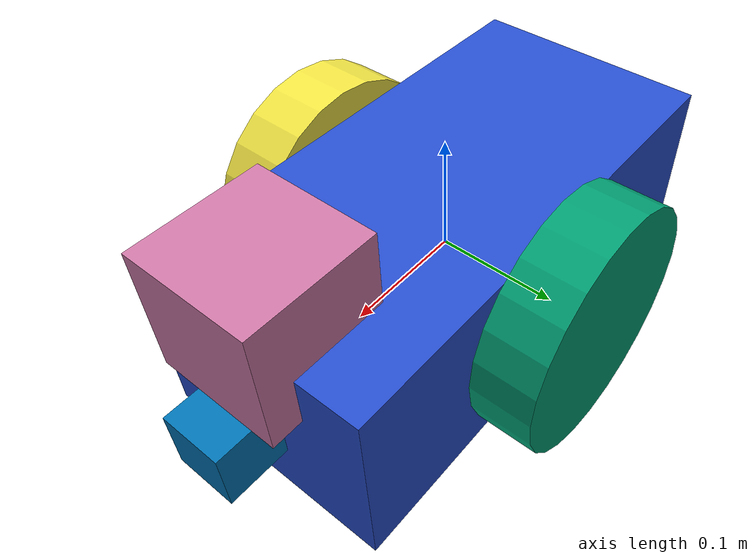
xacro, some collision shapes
<?xml version='1.0'?>

<robot name="my_robot" xmlns:xacro="http://www.ros.org/wiki/xacro">
<xacro:include filename="$(find my_robot)/urdf/my_robot.gazebo" />

  <link name="robot_footprint"></link>

  <joint name="robot_footprint_joint" type="fixed">
    <origin xyz="0 0 0" rpy="0 0 0" />
    <parent link="robot_footprint"/>
    <child link="chassis" />
  </joint>

  <link name='chassis'>
    <pose>0 0 0.1 0 0 0</pose>

    <inertial>
      <mass value="15.0"/>
      <origin xyz="0.0 0 0" rpy=" 0 0 0"/>
      <inertia
          ixx="0.1" ixy="0" ixz="0"
          iyy="0.1" iyz="0"
          izz="0.1"
      />
    </inertial>

    <collision name='collision'>
      <origin xyz="0 0 0" rpy=" 0 0 0"/>
      <geometry>
        <box size=".4025 .2 .15"/>
      </geometry>
    </collision>

    <visual name='chassis_visual'>
      <origin xyz="0 0 0" rpy=" 0 0 0"/>
      <geometry>
        <box size=".4025 .2 .15"/>
      </geometry>
    </visual>

    <collision name='back_caster_collision'>
      <origin xyz="-0.15 0 -0.05" rpy=" 0 0 0"/>
      <geometry>
        <sphere radius="0.0499"/>
      </geometry>
    </collision>

    <visual name='back_caster_visual'>
      <origin xyz="-0.15 0 -0.05" rpy=" 0 0 0"/>
      <geometry>
        <sphere radius="0.05"/>
      </geometry>
    </visual>

    <collision name='front_caster_collision'>
      <origin xyz="0.15 0 -0.05" rpy=" 0 0 0"/>
      <geometry>
        <sphere radius="0.0499"/>
      </geometry>
    </collision>

    <visual name='front_caster_visual'>
      <origin xyz="0.15 0 -0.05" rpy=" 0 0 0"/>
      <geometry>
        <sphere radius="0.05"/>
      </geometry>
    </visual>

  </link>
  <gazebo reference="chassis">
    <material>Gazebo/Blue</material>
  </gazebo>

  <link name="LEFT_wheel">
    <inertial>
      <mass value="5.0"/>
      <origin xyz="0.0 0 0" rpy=" 0 1.5707 1.5707"/>
      <inertia
          ixx="0.1" ixy="0" ixz="0"
          iyy="0.1" iyz="0"
          izz="0.1"
      />
    </inertial>

    <collision name='LEFT_wheel_collision'>
      <origin xyz="0 0 0" rpy=" 0 1.5707 1.5707"/>
      <geometry>
        <cylinder radius="0.1" length="0.05"/>
      </geometry>
    </collision>

    <visual name='LEFT_wheel_visual'>
      <origin xyz="0 0 0" rpy=" 0 1.5707 1.5707"/>
      <geometry>
        <cylinder radius="0.1" length="0.05"/>
      </geometry>
    </visual>

  </link>

  <joint type="continuous" name="LEFT_wheel_hinge">
    <origin xyz="0 0.125 0" rpy="0 0 0"/>
    <child link="LEFT_wheel"/>
    <parent link="chassis"/>
    <axis xyz="0 1 0" rpy="0 0 0"/>
    <limit effort="10000" velocity="1000"/>
    <dynamics damping="1.0" friction="1.0"/>
  </joint>

  <link name="RIGHT_wheel">
    <inertial>
      <mass value="5.0"/>
      <origin xyz="0.0 0 0" rpy=" 0 1.5707 1.5707"/>
      <inertia
          ixx="0.1" ixy="0" ixz="0"
          iyy="0.1" iyz="0"
          izz="0.1"
      />
    </inertial>

    <collision name='RIGHT_wheel_collision'>
      <origin xyz="0 0 0" rpy=" 0 1.5707 1.5707"/>
      <geometry>
        <cylinder radius="0.1" length="0.05"/>
      </geometry>
    </collision>

    <visual name='RIGHT_wheel_visual'>
      <origin xyz="0 0 0" rpy=" 0 1.5707 1.5707"/>
      <geometry>
        <cylinder radius="0.1" length="0.05"/>
      </geometry>
    </visual>

  </link>

  <joint type="continuous" name="RIGHT_wheel_hinge">
    <origin xyz="0 -0.125 0" rpy="0 0 0"/>
    <child link="RIGHT_wheel"/>
    <parent link="chassis"/>
    <axis xyz="0 1 0" rpy="0 0 0"/>
    <limit effort="10000" velocity="1000"/>
    <dynamics damping="1.0" friction="1.0"/>
  </joint>

<!--Link (camera)-->
  <link name='camera'>
    <inertial>
      <origin xyz="0 0 0" rpy="0 0 0"/>
      <mass value="0.1"/>
      <box_inertia m="0.1" x="0.05" y="0.05" z="0.05"/>
      <inertia
          ixx="1e-6" ixy="0" ixz="0"
          iyy="1e-6" iyz="0"
          izz="1e-6"
      />
    </inertial>

    <visual name='camera_visual'>
      <origin xyz="0 0 0" rpy="0 0 0"/>
      <geometry>
        <box size=".05 .05 .05"/>
      </geometry>
    </visual>

    <collision name='camera_collision'>
      <origin xyz="0 0 0" rpy="0 0 0"/>
      <geometry>
        <box size=".05 .05 .05"/>
      </geometry>
    </collision>
  </link>

  <!--Joint (camera)-->
  <joint type="fixed" name="camera_joint">
    <origin xyz="0.225 0 0" rpy="0 0 0"/>
    <child link="camera"/>
    <parent link="chassis"/>
    <axis xyz="0 1 0"/>
  </joint>

  <!--Camera optical Link-->
  <link name="camera_link_optical">
  </link>

  <!--Camera optical Joint-->
  <joint name="camera_optical_joint" type="fixed">
    <origin xyz="0 0 0" rpy="-1.5707 0 -1.5707"/>
    <parent link="camera"/>
    <child link="camera_link_optical"/>
  </joint>

  <!-- LiDAR -->
  <link name="hokuyo">
    <inertial>
      <mass value="1e-5"/>
      <origin xyz="0 0 0" rpy="0 0 0"/>
      <inertia
          ixx="1e-6" ixy="0" ixz="0"
          iyy="1e-6" iyz="0"
          izz="1e-6"
      />
    </inertial>

    <collision name='hokuyo_collision'>
      <origin xyz="0 0 0" rpy="0 0 0"/>
      <geometry>
        <box size="0.1 0.1 0.1"/>
      </geometry>
    </collision>

    <visual name='hokuyo_visual'>
      <origin xyz="0 0 0" rpy="0 0 0"/>
      <geometry>
        <mesh filename="package://my_robot/meshes/hokuyo.dae"/>
      </geometry>
    </visual>

  </link>

  <joint type="fixed" name="hokuyo_joint">
    <origin xyz="0.175 0 0.085" rpy="0 0 0"/>
    <child link="hokuyo"/>
    <parent link="chassis"/>
    <axis xyz="0 1 0" rpy="0 0 0"/>
  </joint>

</robot>
